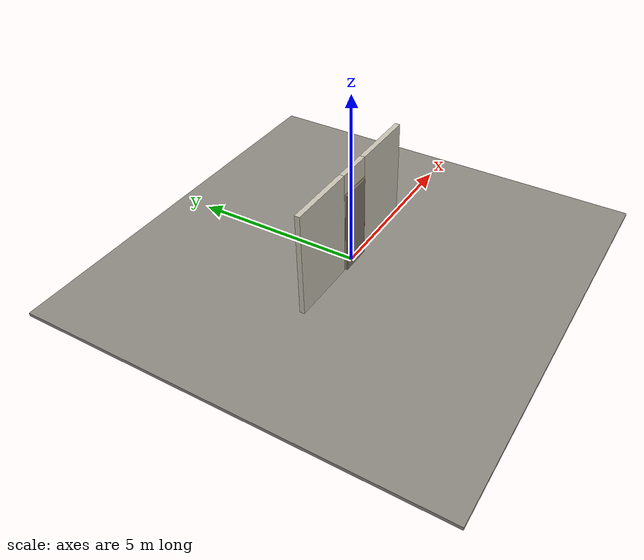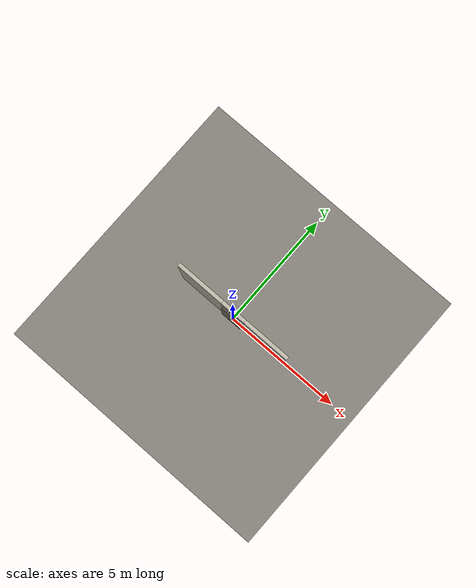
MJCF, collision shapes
<?xml version="1.0" ?>
<mujoco model="db0920_sliding_single_minimal">
  <compiler angle="radian" meshdir="../../hardware" texturedir="../../textures" autolimits="true" inertiafromgeom="false"/>
  <option timestep="0.002" integrator="implicitfast" cone="elliptic" impratio="10" noslip_iterations="3">
    <flag multiccd="enable"/>
  </option>
  <size memory="16M"/>
  <default>
    <geom condim="4" solref="0.005 1" solimp="0.95 0.99 0.001"/>
    <joint solreflimit="0.005 1" solimplimit="0.95 0.99 0.001"/>
    <tendon solreflimit="0.005 1"/>
    <equality solref="0.002 1"/>
  </default>
  <visual>
    <headlight ambient="0.4 0.4 0.4" diffuse="0.7 0.7 0.7" specular="0.2 0.2 0.2"/>
    <quality shadowsize="4096"/>
    <map znear="0.01" zfar="60"/>
  </visual>
  <asset>
    <mesh name="pull_2b47e55ff8" file="pull_2b47e55ff8.obj"/>
    <material name="mat_floor" rgba="0.55 0.53 0.5 1" specular="0.2" shininess="0.15" reflectance="0"/>
    <material name="mat_wall" rgba="0.78 0.76 0.7 1" specular="0.2" shininess="0.1" reflectance="0"/>
    <material name="mat_frame" rgba="0.82 0.7 0.5 1" specular="0.2" shininess="0.45" reflectance="0"/>
    <material name="mat_track" rgba="0.05 0.05 0.05 1" specular="0.38" shininess="0.3" reflectance="0.12"/>
    <material name="mat_leaf" rgba="0.5 0.46 0.425 1" specular="0.2" shininess="0.15" reflectance="0"/>
    <material name="mat_leaf_brace" rgba="0.45 0.414 0.383 1" specular="0.2" shininess="0.2" reflectance="0"/>
    <material name="mat_roller" rgba="0.65 0.66 0.68 1" specular="0.74" shininess="0.5" reflectance="0.36"/>
    <material name="mat_op_black_matte_metal" rgba="0.05 0.05 0.05 1" specular="0.38" shininess="0.3" reflectance="0.12"/>
    <material name="mat_hook" rgba="0.75 0.76 0.77 1" specular="0.8" shininess="0.65" reflectance="0.4"/>
    <texture name="skybox" type="skybox" builtin="gradient" rgb1="0.6 0.7 0.85" rgb2="0.9 0.92 0.95" width="256" height="256"/>
  </asset>
  <worldbody>
    <light name="sun" pos="1.5 -2.5 4" dir="-0.3 0.5 -0.8" directional="true" diffuse="0.8 0.8 0.8" specular="0.3 0.3 0.3" castshadow="true"/>
    <light name="fill" pos="-1.5 2.5 3" dir="0.3 -0.5 -0.7" directional="true" diffuse="0.35 0.35 0.4" castshadow="false"/>
    <camera name="robot_view" pos="0 -2.89375 2.02025" xyaxes="1 0 0 0 0.26963 0.962964" fovy="52"/>
    <camera name="far_view" pos="0 2.89375 2.02025" xyaxes="-1 0 0 0 -0.26963 0.962964" fovy="52"/>
    <camera name="iso" pos="2.19925 -2.43075 2.48325" xyaxes="0.741536 0.670913 0 -0.242917 0.268487 0.932151" fovy="46"/>
    <camera name="detail_handle" pos="0.547 -0.9815 1.28" xyaxes="0.97561 0.219512 0 -0.070934 0.315262 0.94635" fovy="38"/>
    <geom name="floor" type="box" size="6 6 0.05" pos="0 0 -0.05" material="mat_floor" group="0" contype="1" conaffinity="1" friction="0.8 0.005 0.0001" density="2400"/>
    <geom name="wall_left" type="box" size="1.007 0.0725 1.51" pos="-1.493 0 1.51" material="mat_wall" group="0" contype="1" conaffinity="1" friction="0.6 0.005 0.0001" density="800"/>
    <geom name="wall_right" type="box" size="0.977 0.0725 1.51" pos="1.523 0 1.51" material="mat_wall" group="0" contype="1" conaffinity="1" friction="0.6 0.005 0.0001" density="800"/>
    <geom name="wall_header" type="box" size="0.516 0.0725 0.2905" pos="0.03 0 2.7295" material="mat_wall" group="0" contype="1" conaffinity="1" friction="0.6 0.005 0.0001" density="800"/>
    <geom name="jamb_l" type="box" size="0.0095 0.0725 1.21" pos="-0.4765 0 1.21" material="mat_frame" group="0" contype="1" conaffinity="1" friction="0.6 0.005 0.0001" density="300"/>
    <geom name="jamb_head" type="box" size="0.486 0.0725 0.0095" pos="0 0 2.4295" material="mat_frame" group="0" contype="1" conaffinity="1" friction="0.6 0.005 0.0001" density="300"/>
    <geom name="jamb_latch_0" type="box" size="0.0395 0.0725 1.21" pos="0.5065 0 1.21" material="mat_frame" group="0" contype="1" conaffinity="1" friction="0.6 0.005 0.0001" density="300"/>
    <site name="approach_point" pos="0 -1.5 0" quat="1 0 0 0" size="0.05" rgba="0.2 0.9 0.2 0.5" group="4"/>
    <site name="goal_point" pos="0 1.5 0" quat="1 0 0 0" size="0.05" rgba="0.2 0.9 0.2 0.5" group="4"/>
    <site name="door_plane_center" pos="0 0 1.21" quat="1 0 0 0" size="0.02" rgba="0.2 0.9 0.2 0.5" group="4"/>
    <body name="leaf" pos="0 -0.1145 0">
      <inertial pos="0.003873 -0.000624 1.209763" mass="47.028832" quat="0.499761 0.50124 0.498622 -0.500373" diaginertia="3.31483498 22.372260788 25.66854241"/>
      <joint name="leaf_slide" type="slide" axis="-1 0 0" limited="true" range="0 0.914" damping="4.351442" frictionloss="18.447812" armature="0.5"/>
      <geom name="leaf_slab" type="box" size="0.457 0.022 1.2" pos="0 0 1.212" material="mat_leaf" group="0" contype="1" conaffinity="1" friction="0.45 0.005 0.0001" density="1"/>
      <geom name="leaf_pull_n" type="mesh" mesh="pull_2b47e55ff8" pos="0.367 -0.022 1" quat="0.707107 0.707107 0 0" material="mat_op_black_matte_metal" group="1" contype="0" conaffinity="0" density="3000"/>
      <geom name="leaf_pull_col_n" type="capsule" size="0.006 0.13" pos="0.367 -0.067 1" material="mat_op_black_matte_metal" group="3" contype="1" conaffinity="1" rgba="0.8 0.3 0.3 0.25" friction="0.7 0.01 0.0001" density="3000"/>
      <site name="leaf_pull_grip_n" pos="0.367 -0.067 1" quat="1 0 0 0" size="0.012" rgba="0.2 0.9 0.2 0.5" group="4"/>
      <site name="leaf_edge_mid" pos="0.457 0 1.212" quat="1 0 0 0" size="0.02" rgba="0.2 0.9 0.2 0.5" group="4"/>
    </body>
  </worldbody>
  <sensor>
    <jointpos name="leaf_slide_pos" joint="leaf_slide"/>
    <jointvel name="leaf_slide_vel" joint="leaf_slide"/>
  </sensor>
</mujoco>
